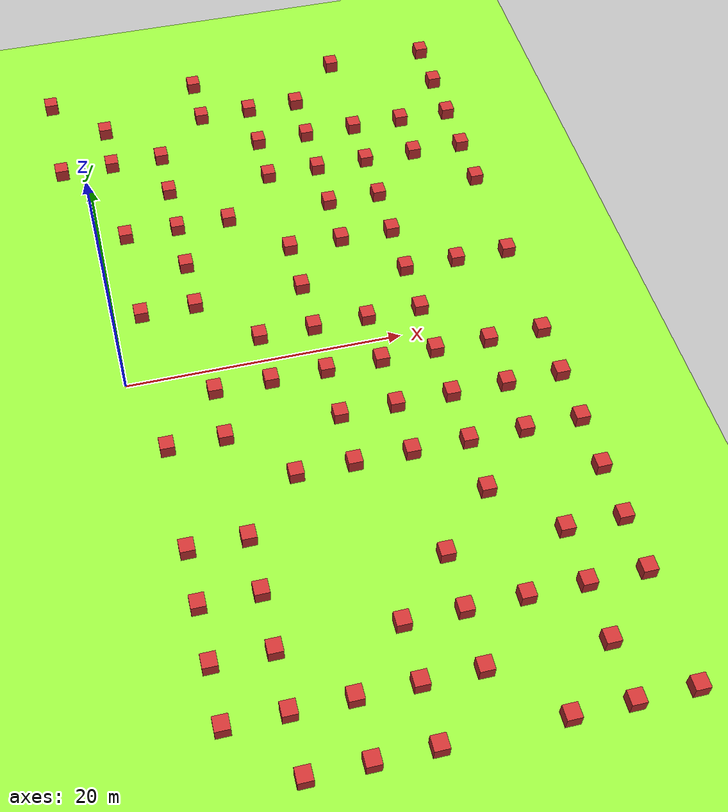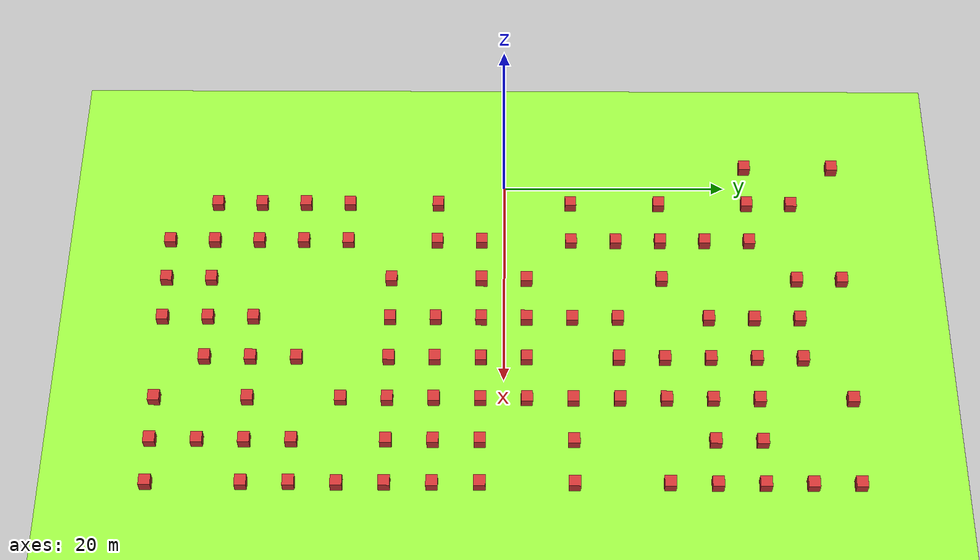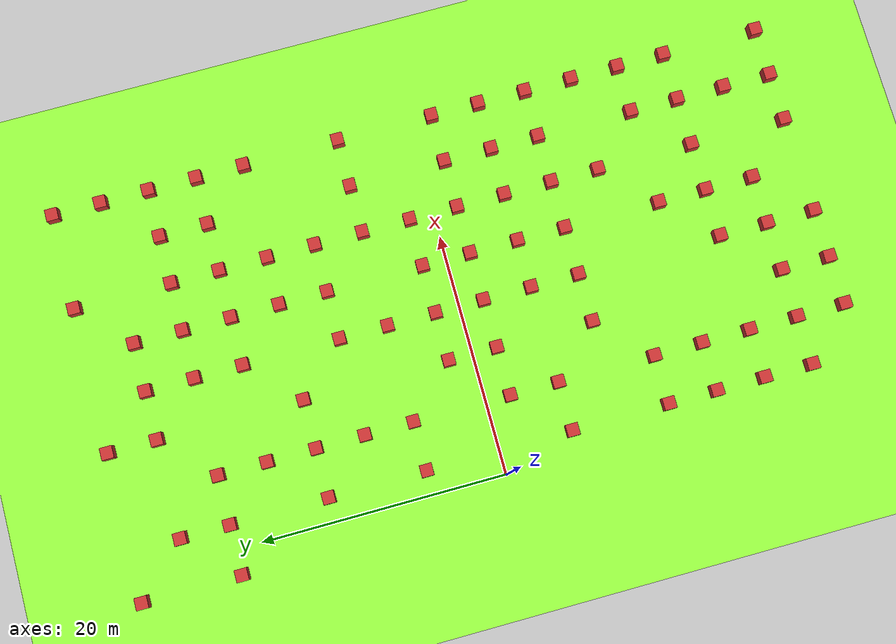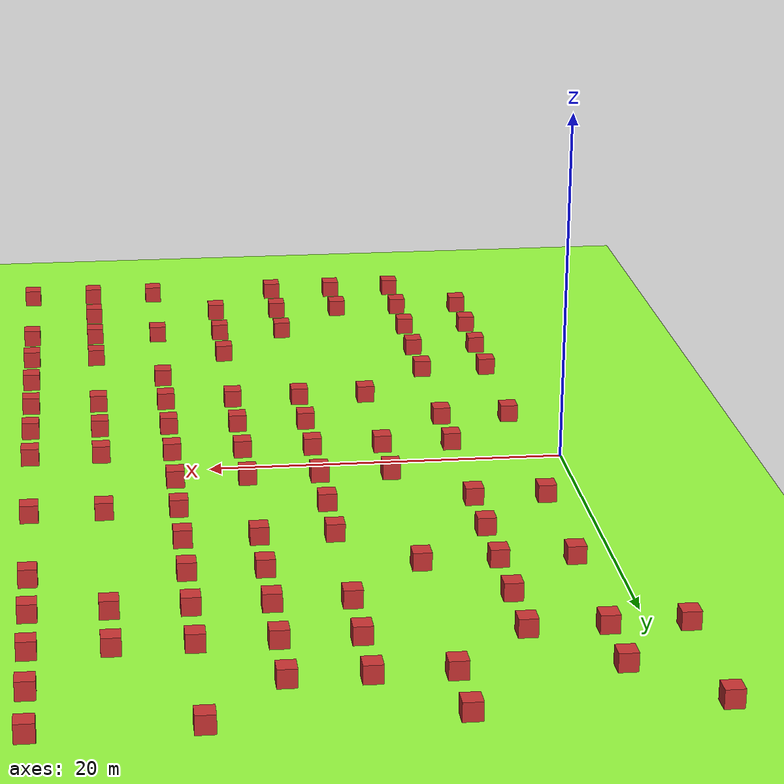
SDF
<sdf version="1.9">
 <world name="lawn_boxes">
  <model name="ground_plane">
   <static>true</static>
   <link name="link">
    <collision name="collision">
     <geometry><plane><normal>0 0 1</normal><size>1 1</size></plane></geometry>
     <surface>
      <friction><ode><mu>0.6</mu><mu2>0.6</mu2></ode></friction>
      <contact><collide_bitmask>65535</collide_bitmask><ode><min_depth>0.005</min_depth><kp>1e8</kp></ode></contact>
     </surface>
    </collision>
    <visual name="visual">
     <cast_shadows>false</cast_shadows>
     <geometry><plane><normal>0 0 1</normal><size>400 400</size></plane></geometry>
     <material>
      <diffuse>0.6 1.0 0.25 0.5</diffuse>
      <specular>0 0 0 0</specular>
      <emissive>0 0 0 0</emissive>
     </material>
    </visual>
    <inertial>
     <mass>1</mass>
     <inertia><ixx>1</ixx><ixy>0</ixy><ixz>0</ixz><iyy>1</iyy><iyz>0</iyz><izz>1</izz></inertia>
    </inertial>
   </link>
  </model>
  <model name="obstacle_box_90">
   <static>true</static>
   <pose>-2.00 22.00 0.50 0 0 0</pose>
   <link name="link">
    <collision name="collision"><geometry><box><size>1.0 1.0 1.0</size></box></geometry></collision>
    <visual name="visual">
     <geometry><box><size>1.0 1.0 1.0</size></box></geometry>
     <material><diffuse>0.8 0.2 0.2 1</diffuse><ambient>0.8 0.2 0.2 1</ambient></material>
    </visual>
   </link>
  </model>
  <model name="obstacle_box_91">
   <static>true</static>
   <pose>-2.00 30.00 0.50 0 0 0</pose>
   <link name="link">
    <collision name="collision"><geometry><box><size>1.0 1.0 1.0</size></box></geometry></collision>
    <visual name="visual">
     <geometry><box><size>1.0 1.0 1.0</size></box></geometry>
     <material><diffuse>0.8 0.2 0.2 1</diffuse><ambient>0.8 0.2 0.2 1</ambient></material>
    </visual>
   </link>
  </model>
  <model name="obstacle_box_92">
   <static>true</static>
   <pose>2.00 -26.00 0.50 0 0 0</pose>
   <link name="link">
    <collision name="collision"><geometry><box><size>1.0 1.0 1.0</size></box></geometry></collision>
    <visual name="visual">
     <geometry><box><size>1.0 1.0 1.0</size></box></geometry>
     <material><diffuse>0.8 0.2 0.2 1</diffuse><ambient>0.8 0.2 0.2 1</ambient></material>
    </visual>
   </link>
  </model>
  <model name="obstacle_box_93">
   <static>true</static>
   <pose>2.00 -22.00 0.50 0 0 0</pose>
   <link name="link">
    <collision name="collision"><geometry><box><size>1.0 1.0 1.0</size></box></geometry></collision>
    <visual name="visual">
     <geometry><box><size>1.0 1.0 1.0</size></box></geometry>
     <material><diffuse>0.8 0.2 0.2 1</diffuse><ambient>0.8 0.2 0.2 1</ambient></material>
    </visual>
   </link>
  </model>
  <model name="obstacle_box_94">
   <static>true</static>
   <pose>2.00 -18.00 0.50 0 0 0</pose>
   <link name="link">
    <collision name="collision"><geometry><box><size>1.0 1.0 1.0</size></box></geometry></collision>
    <visual name="visual">
     <geometry><box><size>1.0 1.0 1.0</size></box></geometry>
     <material><diffuse>0.8 0.2 0.2 1</diffuse><ambient>0.8 0.2 0.2 1</ambient></material>
    </visual>
   </link>
  </model>
  <model name="obstacle_box_95">
   <static>true</static>
   <pose>2.00 -14.00 0.50 0 0 0</pose>
   <link name="link">
    <collision name="collision"><geometry><box><size>1.0 1.0 1.0</size></box></geometry></collision>
    <visual name="visual">
     <geometry><box><size>1.0 1.0 1.0</size></box></geometry>
     <material><diffuse>0.8 0.2 0.2 1</diffuse><ambient>0.8 0.2 0.2 1</ambient></material>
    </visual>
   </link>
  </model>
  <model name="obstacle_box_96">
   <static>true</static>
   <pose>2.00 -6.00 0.50 0 0 0</pose>
   <link name="link">
    <collision name="collision"><geometry><box><size>1.0 1.0 1.0</size></box></geometry></collision>
    <visual name="visual">
     <geometry><box><size>1.0 1.0 1.0</size></box></geometry>
     <material><diffuse>0.8 0.2 0.2 1</diffuse><ambient>0.8 0.2 0.2 1</ambient></material>
    </visual>
   </link>
  </model>
  <model name="obstacle_box_97">
   <static>true</static>
   <pose>2.00 6.00 0.50 0 0 0</pose>
   <link name="link">
    <collision name="collision"><geometry><box><size>1.0 1.0 1.0</size></box></geometry></collision>
    <visual name="visual">
     <geometry><box><size>1.0 1.0 1.0</size></box></geometry>
     <material><diffuse>0.8 0.2 0.2 1</diffuse><ambient>0.8 0.2 0.2 1</ambient></material>
    </visual>
   </link>
  </model>
  <model name="obstacle_box_98">
   <static>true</static>
   <pose>2.00 14.00 0.50 0 0 0</pose>
   <link name="link">
    <collision name="collision"><geometry><box><size>1.0 1.0 1.0</size></box></geometry></collision>
    <visual name="visual">
     <geometry><box><size>1.0 1.0 1.0</size></box></geometry>
     <material><diffuse>0.8 0.2 0.2 1</diffuse><ambient>0.8 0.2 0.2 1</ambient></material>
    </visual>
   </link>
  </model>
  <model name="obstacle_box_99">
   <static>true</static>
   <pose>2.00 22.00 0.50 0 0 0</pose>
   <link name="link">
    <collision name="collision"><geometry><box><size>1.0 1.0 1.0</size></box></geometry></collision>
    <visual name="visual">
     <geometry><box><size>1.0 1.0 1.0</size></box></geometry>
     <material><diffuse>0.8 0.2 0.2 1</diffuse><ambient>0.8 0.2 0.2 1</ambient></material>
    </visual>
   </link>
  </model>
  <model name="obstacle_box_100">
   <static>true</static>
   <pose>2.00 26.00 0.50 0 0 0</pose>
   <link name="link">
    <collision name="collision"><geometry><box><size>1.0 1.0 1.0</size></box></geometry></collision>
    <visual name="visual">
     <geometry><box><size>1.0 1.0 1.0</size></box></geometry>
     <material><diffuse>0.8 0.2 0.2 1</diffuse><ambient>0.8 0.2 0.2 1</ambient></material>
    </visual>
   </link>
  </model>
  <model name="obstacle_box_101">
   <static>true</static>
   <pose>6.00 -30.00 0.50 0 0 0</pose>
   <link name="link">
    <collision name="collision"><geometry><box><size>1.0 1.0 1.0</size></box></geometry></collision>
    <visual name="visual">
     <geometry><box><size>1.0 1.0 1.0</size></box></geometry>
     <material><diffuse>0.8 0.2 0.2 1</diffuse><ambient>0.8 0.2 0.2 1</ambient></material>
    </visual>
   </link>
  </model>
  <model name="obstacle_box_102">
   <static>true</static>
   <pose>6.00 -26.00 0.50 0 0 0</pose>
   <link name="link">
    <collision name="collision"><geometry><box><size>1.0 1.0 1.0</size></box></geometry></collision>
    <visual name="visual">
     <geometry><box><size>1.0 1.0 1.0</size></box></geometry>
     <material><diffuse>0.8 0.2 0.2 1</diffuse><ambient>0.8 0.2 0.2 1</ambient></material>
    </visual>
   </link>
  </model>
  <model name="obstacle_box_103">
   <static>true</static>
   <pose>6.00 -22.00 0.50 0 0 0</pose>
   <link name="link">
    <collision name="collision"><geometry><box><size>1.0 1.0 1.0</size></box></geometry></collision>
    <visual name="visual">
     <geometry><box><size>1.0 1.0 1.0</size></box></geometry>
     <material><diffuse>0.8 0.2 0.2 1</diffuse><ambient>0.8 0.2 0.2 1</ambient></material>
    </visual>
   </link>
  </model>
  <model name="obstacle_box_104">
   <static>true</static>
   <pose>6.00 -18.00 0.50 0 0 0</pose>
   <link name="link">
    <collision name="collision"><geometry><box><size>1.0 1.0 1.0</size></box></geometry></collision>
    <visual name="visual">
     <geometry><box><size>1.0 1.0 1.0</size></box></geometry>
     <material><diffuse>0.8 0.2 0.2 1</diffuse><ambient>0.8 0.2 0.2 1</ambient></material>
    </visual>
   </link>
  </model>
  <model name="obstacle_box_105">
   <static>true</static>
   <pose>6.00 -14.00 0.50 0 0 0</pose>
   <link name="link">
    <collision name="collision"><geometry><box><size>1.0 1.0 1.0</size></box></geometry></collision>
    <visual name="visual">
     <geometry><box><size>1.0 1.0 1.0</size></box></geometry>
     <material><diffuse>0.8 0.2 0.2 1</diffuse><ambient>0.8 0.2 0.2 1</ambient></material>
    </visual>
   </link>
  </model>
  <model name="obstacle_box_106">
   <static>true</static>
   <pose>6.00 -6.00 0.50 0 0 0</pose>
   <link name="link">
    <collision name="collision"><geometry><box><size>1.0 1.0 1.0</size></box></geometry></collision>
    <visual name="visual">
     <geometry><box><size>1.0 1.0 1.0</size></box></geometry>
     <material><diffuse>0.8 0.2 0.2 1</diffuse><ambient>0.8 0.2 0.2 1</ambient></material>
    </visual>
   </link>
  </model>
  <model name="obstacle_box_107">
   <static>true</static>
   <pose>6.00 -2.00 0.50 0 0 0</pose>
   <link name="link">
    <collision name="collision"><geometry><box><size>1.0 1.0 1.0</size></box></geometry></collision>
    <visual name="visual">
     <geometry><box><size>1.0 1.0 1.0</size></box></geometry>
     <material><diffuse>0.8 0.2 0.2 1</diffuse><ambient>0.8 0.2 0.2 1</ambient></material>
    </visual>
   </link>
  </model>
  <model name="obstacle_box_108">
   <static>true</static>
   <pose>6.00 6.00 0.50 0 0 0</pose>
   <link name="link">
    <collision name="collision"><geometry><box><size>1.0 1.0 1.0</size></box></geometry></collision>
    <visual name="visual">
     <geometry><box><size>1.0 1.0 1.0</size></box></geometry>
     <material><diffuse>0.8 0.2 0.2 1</diffuse><ambient>0.8 0.2 0.2 1</ambient></material>
    </visual>
   </link>
  </model>
  <model name="obstacle_box_109">
   <static>true</static>
   <pose>6.00 10.00 0.50 0 0 0</pose>
   <link name="link">
    <collision name="collision"><geometry><box><size>1.0 1.0 1.0</size></box></geometry></collision>
    <visual name="visual">
     <geometry><box><size>1.0 1.0 1.0</size></box></geometry>
     <material><diffuse>0.8 0.2 0.2 1</diffuse><ambient>0.8 0.2 0.2 1</ambient></material>
    </visual>
   </link>
  </model>
  <model name="obstacle_box_110">
   <static>true</static>
   <pose>6.00 14.00 0.50 0 0 0</pose>
   <link name="link">
    <collision name="collision"><geometry><box><size>1.0 1.0 1.0</size></box></geometry></collision>
    <visual name="visual">
     <geometry><box><size>1.0 1.0 1.0</size></box></geometry>
     <material><diffuse>0.8 0.2 0.2 1</diffuse><ambient>0.8 0.2 0.2 1</ambient></material>
    </visual>
   </link>
  </model>
  <model name="obstacle_box_111">
   <static>true</static>
   <pose>6.00 18.00 0.50 0 0 0</pose>
   <link name="link">
    <collision name="collision"><geometry><box><size>1.0 1.0 1.0</size></box></geometry></collision>
    <visual name="visual">
     <geometry><box><size>1.0 1.0 1.0</size></box></geometry>
     <material><diffuse>0.8 0.2 0.2 1</diffuse><ambient>0.8 0.2 0.2 1</ambient></material>
    </visual>
   </link>
  </model>
  <model name="obstacle_box_112">
   <static>true</static>
   <pose>6.00 22.00 0.50 0 0 0</pose>
   <link name="link">
    <collision name="collision"><geometry><box><size>1.0 1.0 1.0</size></box></geometry></collision>
    <visual name="visual">
     <geometry><box><size>1.0 1.0 1.0</size></box></geometry>
     <material><diffuse>0.8 0.2 0.2 1</diffuse><ambient>0.8 0.2 0.2 1</ambient></material>
    </visual>
   </link>
  </model>
  <model name="obstacle_box_113">
   <static>true</static>
   <pose>10.00 -30.00 0.50 0 0 0</pose>
   <link name="link">
    <collision name="collision"><geometry><box><size>1.0 1.0 1.0</size></box></geometry></collision>
    <visual name="visual">
     <geometry><box><size>1.0 1.0 1.0</size></box></geometry>
     <material><diffuse>0.8 0.2 0.2 1</diffuse><ambient>0.8 0.2 0.2 1</ambient></material>
    </visual>
   </link>
  </model>
  <model name="obstacle_box_114">
   <static>true</static>
   <pose>10.00 -26.00 0.50 0 0 0</pose>
   <link name="link">
    <collision name="collision"><geometry><box><size>1.0 1.0 1.0</size></box></geometry></collision>
    <visual name="visual">
     <geometry><box><size>1.0 1.0 1.0</size></box></geometry>
     <material><diffuse>0.8 0.2 0.2 1</diffuse><ambient>0.8 0.2 0.2 1</ambient></material>
    </visual>
   </link>
  </model>
  <model name="obstacle_box_115">
   <static>true</static>
   <pose>10.00 -10.00 0.50 0 0 0</pose>
   <link name="link">
    <collision name="collision"><geometry><box><size>1.0 1.0 1.0</size></box></geometry></collision>
    <visual name="visual">
     <geometry><box><size>1.0 1.0 1.0</size></box></geometry>
     <material><diffuse>0.8 0.2 0.2 1</diffuse><ambient>0.8 0.2 0.2 1</ambient></material>
    </visual>
   </link>
  </model>
  <model name="obstacle_box_116">
   <static>true</static>
   <pose>10.00 -2.00 0.50 0 0 0</pose>
   <link name="link">
    <collision name="collision"><geometry><box><size>1.0 1.0 1.0</size></box></geometry></collision>
    <visual name="visual">
     <geometry><box><size>1.0 1.0 1.0</size></box></geometry>
     <material><diffuse>0.8 0.2 0.2 1</diffuse><ambient>0.8 0.2 0.2 1</ambient></material>
    </visual>
   </link>
  </model>
  <model name="obstacle_box_117">
   <static>true</static>
   <pose>10.00 2.00 0.50 0 0 0</pose>
   <link name="link">
    <collision name="collision"><geometry><box><size>1.0 1.0 1.0</size></box></geometry></collision>
    <visual name="visual">
     <geometry><box><size>1.0 1.0 1.0</size></box></geometry>
     <material><diffuse>0.8 0.2 0.2 1</diffuse><ambient>0.8 0.2 0.2 1</ambient></material>
    </visual>
   </link>
  </model>
  <model name="obstacle_box_118">
   <static>true</static>
   <pose>10.00 14.00 0.50 0 0 0</pose>
   <link name="link">
    <collision name="collision"><geometry><box><size>1.0 1.0 1.0</size></box></geometry></collision>
    <visual name="visual">
     <geometry><box><size>1.0 1.0 1.0</size></box></geometry>
     <material><diffuse>0.8 0.2 0.2 1</diffuse><ambient>0.8 0.2 0.2 1</ambient></material>
    </visual>
   </link>
  </model>
  <model name="obstacle_box_119">
   <static>true</static>
   <pose>10.00 26.00 0.50 0 0 0</pose>
   <link name="link">
    <collision name="collision"><geometry><box><size>1.0 1.0 1.0</size></box></geometry></collision>
    <visual name="visual">
     <geometry><box><size>1.0 1.0 1.0</size></box></geometry>
     <material><diffuse>0.8 0.2 0.2 1</diffuse><ambient>0.8 0.2 0.2 1</ambient></material>
    </visual>
   </link>
  </model>
  <model name="obstacle_box_120">
   <static>true</static>
   <pose>10.00 30.00 0.50 0 0 0</pose>
   <link name="link">
    <collision name="collision"><geometry><box><size>1.0 1.0 1.0</size></box></geometry></collision>
    <visual name="visual">
     <geometry><box><size>1.0 1.0 1.0</size></box></geometry>
     <material><diffuse>0.8 0.2 0.2 1</diffuse><ambient>0.8 0.2 0.2 1</ambient></material>
    </visual>
   </link>
  </model>
  <model name="obstacle_box_121">
   <static>true</static>
   <pose>14.00 -30.00 0.50 0 0 0</pose>
   <link name="link">
    <collision name="collision"><geometry><box><size>1.0 1.0 1.0</size></box></geometry></collision>
    <visual name="visual">
     <geometry><box><size>1.0 1.0 1.0</size></box></geometry>
     <material><diffuse>0.8 0.2 0.2 1</diffuse><ambient>0.8 0.2 0.2 1</ambient></material>
    </visual>
   </link>
  </model>
  <model name="obstacle_box_122">
   <static>true</static>
   <pose>14.00 -26.00 0.50 0 0 0</pose>
   <link name="link">
    <collision name="collision"><geometry><box><size>1.0 1.0 1.0</size></box></geometry></collision>
    <visual name="visual">
     <geometry><box><size>1.0 1.0 1.0</size></box></geometry>
     <material><diffuse>0.8 0.2 0.2 1</diffuse><ambient>0.8 0.2 0.2 1</ambient></material>
    </visual>
   </link>
  </model>
  <model name="obstacle_box_123">
   <static>true</static>
   <pose>14.00 -22.00 0.50 0 0 0</pose>
   <link name="link">
    <collision name="collision"><geometry><box><size>1.0 1.0 1.0</size></box></geometry></collision>
    <visual name="visual">
     <geometry><box><size>1.0 1.0 1.0</size></box></geometry>
     <material><diffuse>0.8 0.2 0.2 1</diffuse><ambient>0.8 0.2 0.2 1</ambient></material>
    </visual>
   </link>
  </model>
  <model name="obstacle_box_124">
   <static>true</static>
   <pose>14.00 -10.00 0.50 0 0 0</pose>
   <link name="link">
    <collision name="collision"><geometry><box><size>1.0 1.0 1.0</size></box></geometry></collision>
    <visual name="visual">
     <geometry><box><size>1.0 1.0 1.0</size></box></geometry>
     <material><diffuse>0.8 0.2 0.2 1</diffuse><ambient>0.8 0.2 0.2 1</ambient></material>
    </visual>
   </link>
  </model>
  <model name="obstacle_box_125">
   <static>true</static>
   <pose>14.00 -6.00 0.50 0 0 0</pose>
   <link name="link">
    <collision name="collision"><geometry><box><size>1.0 1.0 1.0</size></box></geometry></collision>
    <visual name="visual">
     <geometry><box><size>1.0 1.0 1.0</size></box></geometry>
     <material><diffuse>0.8 0.2 0.2 1</diffuse><ambient>0.8 0.2 0.2 1</ambient></material>
    </visual>
   </link>
  </model>
  <model name="obstacle_box_126">
   <static>true</static>
   <pose>14.00 -2.00 0.50 0 0 0</pose>
   <link name="link">
    <collision name="collision"><geometry><box><size>1.0 1.0 1.0</size></box></geometry></collision>
    <visual name="visual">
     <geometry><box><size>1.0 1.0 1.0</size></box></geometry>
     <material><diffuse>0.8 0.2 0.2 1</diffuse><ambient>0.8 0.2 0.2 1</ambient></material>
    </visual>
   </link>
  </model>
  <model name="obstacle_box_127">
   <static>true</static>
   <pose>14.00 2.00 0.50 0 0 0</pose>
   <link name="link">
    <collision name="collision"><geometry><box><size>1.0 1.0 1.0</size></box></geometry></collision>
    <visual name="visual">
     <geometry><box><size>1.0 1.0 1.0</size></box></geometry>
     <material><diffuse>0.8 0.2 0.2 1</diffuse><ambient>0.8 0.2 0.2 1</ambient></material>
    </visual>
   </link>
  </model>
  <model name="obstacle_box_128">
   <static>true</static>
   <pose>14.00 6.00 0.50 0 0 0</pose>
   <link name="link">
    <collision name="collision"><geometry><box><size>1.0 1.0 1.0</size></box></geometry></collision>
    <visual name="visual">
     <geometry><box><size>1.0 1.0 1.0</size></box></geometry>
     <material><diffuse>0.8 0.2 0.2 1</diffuse><ambient>0.8 0.2 0.2 1</ambient></material>
    </visual>
   </link>
  </model>
  <model name="obstacle_box_129">
   <static>true</static>
   <pose>14.00 10.00 0.50 0 0 0</pose>
   <link name="link">
    <collision name="collision"><geometry><box><size>1.0 1.0 1.0</size></box></geometry></collision>
    <visual name="visual">
     <geometry><box><size>1.0 1.0 1.0</size></box></geometry>
     <material><diffuse>0.8 0.2 0.2 1</diffuse><ambient>0.8 0.2 0.2 1</ambient></material>
    </visual>
   </link>
  </model>
  <model name="obstacle_box_130">
   <static>true</static>
   <pose>14.00 18.00 0.50 0 0 0</pose>
   <link name="link">
    <collision name="collision"><geometry><box><size>1.0 1.0 1.0</size></box></geometry></collision>
    <visual name="visual">
     <geometry><box><size>1.0 1.0 1.0</size></box></geometry>
     <material><diffuse>0.8 0.2 0.2 1</diffuse><ambient>0.8 0.2 0.2 1</ambient></material>
    </visual>
   </link>
  </model>
  <model name="obstacle_box_131">
   <static>true</static>
   <pose>14.00 22.00 0.50 0 0 0</pose>
   <link name="link">
    <collision name="collision"><geometry><box><size>1.0 1.0 1.0</size></box></geometry></collision>
    <visual name="visual">
     <geometry><box><size>1.0 1.0 1.0</size></box></geometry>
     <material><diffuse>0.8 0.2 0.2 1</diffuse><ambient>0.8 0.2 0.2 1</ambient></material>
    </visual>
   </link>
  </model>
  <model name="obstacle_box_132">
   <static>true</static>
   <pose>14.00 26.00 0.50 0 0 0</pose>
   <link name="link">
    <collision name="collision"><geometry><box><size>1.0 1.0 1.0</size></box></geometry></collision>
    <visual name="visual">
     <geometry><box><size>1.0 1.0 1.0</size></box></geometry>
     <material><diffuse>0.8 0.2 0.2 1</diffuse><ambient>0.8 0.2 0.2 1</ambient></material>
    </visual>
   </link>
  </model>
  <model name="obstacle_box_133">
   <static>true</static>
   <pose>18.00 -26.00 0.50 0 0 0</pose>
   <link name="link">
    <collision name="collision"><geometry><box><size>1.0 1.0 1.0</size></box></geometry></collision>
    <visual name="visual">
     <geometry><box><size>1.0 1.0 1.0</size></box></geometry>
     <material><diffuse>0.8 0.2 0.2 1</diffuse><ambient>0.8 0.2 0.2 1</ambient></material>
    </visual>
   </link>
  </model>
  <model name="obstacle_box_134">
   <static>true</static>
   <pose>18.00 -22.00 0.50 0 0 0</pose>
   <link name="link">
    <collision name="collision"><geometry><box><size>1.0 1.0 1.0</size></box></geometry></collision>
    <visual name="visual">
     <geometry><box><size>1.0 1.0 1.0</size></box></geometry>
     <material><diffuse>0.8 0.2 0.2 1</diffuse><ambient>0.8 0.2 0.2 1</ambient></material>
    </visual>
   </link>
  </model>
  <model name="obstacle_box_135">
   <static>true</static>
   <pose>18.00 -18.00 0.50 0 0 0</pose>
   <link name="link">
    <collision name="collision"><geometry><box><size>1.0 1.0 1.0</size></box></geometry></collision>
    <visual name="visual">
     <geometry><box><size>1.0 1.0 1.0</size></box></geometry>
     <material><diffuse>0.8 0.2 0.2 1</diffuse><ambient>0.8 0.2 0.2 1</ambient></material>
    </visual>
   </link>
  </model>
  <model name="obstacle_box_136">
   <static>true</static>
   <pose>18.00 -10.00 0.50 0 0 0</pose>
   <link name="link">
    <collision name="collision"><geometry><box><size>1.0 1.0 1.0</size></box></geometry></collision>
    <visual name="visual">
     <geometry><box><size>1.0 1.0 1.0</size></box></geometry>
     <material><diffuse>0.8 0.2 0.2 1</diffuse><ambient>0.8 0.2 0.2 1</ambient></material>
    </visual>
   </link>
  </model>
  <model name="obstacle_box_137">
   <static>true</static>
   <pose>18.00 -6.00 0.50 0 0 0</pose>
   <link name="link">
    <collision name="collision"><geometry><box><size>1.0 1.0 1.0</size></box></geometry></collision>
    <visual name="visual">
     <geometry><box><size>1.0 1.0 1.0</size></box></geometry>
     <material><diffuse>0.8 0.2 0.2 1</diffuse><ambient>0.8 0.2 0.2 1</ambient></material>
    </visual>
   </link>
  </model>
  <model name="obstacle_box_138">
   <static>true</static>
   <pose>18.00 -2.00 0.50 0 0 0</pose>
   <link name="link">
    <collision name="collision"><geometry><box><size>1.0 1.0 1.0</size></box></geometry></collision>
    <visual name="visual">
     <geometry><box><size>1.0 1.0 1.0</size></box></geometry>
     <material><diffuse>0.8 0.2 0.2 1</diffuse><ambient>0.8 0.2 0.2 1</ambient></material>
    </visual>
   </link>
  </model>
  <model name="obstacle_box_139">
   <static>true</static>
   <pose>18.00 2.00 0.50 0 0 0</pose>
   <link name="link">
    <collision name="collision"><geometry><box><size>1.0 1.0 1.0</size></box></geometry></collision>
    <visual name="visual">
     <geometry><box><size>1.0 1.0 1.0</size></box></geometry>
     <material><diffuse>0.8 0.2 0.2 1</diffuse><ambient>0.8 0.2 0.2 1</ambient></material>
    </visual>
   </link>
  </model>
  <model name="obstacle_box_140">
   <static>true</static>
   <pose>18.00 10.00 0.50 0 0 0</pose>
   <link name="link">
    <collision name="collision"><geometry><box><size>1.0 1.0 1.0</size></box></geometry></collision>
    <visual name="visual">
     <geometry><box><size>1.0 1.0 1.0</size></box></geometry>
     <material><diffuse>0.8 0.2 0.2 1</diffuse><ambient>0.8 0.2 0.2 1</ambient></material>
    </visual>
   </link>
  </model>
  <model name="obstacle_box_141">
   <static>true</static>
   <pose>18.00 14.00 0.50 0 0 0</pose>
   <link name="link">
    <collision name="collision"><geometry><box><size>1.0 1.0 1.0</size></box></geometry></collision>
    <visual name="visual">
     <geometry><box><size>1.0 1.0 1.0</size></box></geometry>
     <material><diffuse>0.8 0.2 0.2 1</diffuse><ambient>0.8 0.2 0.2 1</ambient></material>
    </visual>
   </link>
  </model>
  <model name="obstacle_box_142">
   <static>true</static>
   <pose>18.00 18.00 0.50 0 0 0</pose>
   <link name="link">
    <collision name="collision"><geometry><box><size>1.0 1.0 1.0</size></box></geometry></collision>
    <visual name="visual">
     <geometry><box><size>1.0 1.0 1.0</size></box></geometry>
     <material><diffuse>0.8 0.2 0.2 1</diffuse><ambient>0.8 0.2 0.2 1</ambient></material>
    </visual>
   </link>
  </model>
  <model name="obstacle_box_143">
   <static>true</static>
   <pose>18.00 22.00 0.50 0 0 0</pose>
   <link name="link">
    <collision name="collision"><geometry><box><size>1.0 1.0 1.0</size></box></geometry></collision>
    <visual name="visual">
     <geometry><box><size>1.0 1.0 1.0</size></box></geometry>
     <material><diffuse>0.8 0.2 0.2 1</diffuse><ambient>0.8 0.2 0.2 1</ambient></material>
    </visual>
   </link>
  </model>
  <model name="obstacle_box_144">
   <static>true</static>
   <pose>18.00 26.00 0.50 0 0 0</pose>
   <link name="link">
    <collision name="collision"><geometry><box><size>1.0 1.0 1.0</size></box></geometry></collision>
    <visual name="visual">
     <geometry><box><size>1.0 1.0 1.0</size></box></geometry>
     <material><diffuse>0.8 0.2 0.2 1</diffuse><ambient>0.8 0.2 0.2 1</ambient></material>
    </visual>
   </link>
  </model>
  <model name="obstacle_box_145">
   <static>true</static>
   <pose>22.00 -30.00 0.50 0 0 0</pose>
   <link name="link">
    <collision name="collision"><geometry><box><size>1.0 1.0 1.0</size></box></geometry></collision>
    <visual name="visual">
     <geometry><box><size>1.0 1.0 1.0</size></box></geometry>
     <material><diffuse>0.8 0.2 0.2 1</diffuse><ambient>0.8 0.2 0.2 1</ambient></material>
    </visual>
   </link>
  </model>
  <model name="obstacle_box_146">
   <static>true</static>
   <pose>22.00 -22.00 0.50 0 0 0</pose>
   <link name="link">
    <collision name="collision"><geometry><box><size>1.0 1.0 1.0</size></box></geometry></collision>
    <visual name="visual">
     <geometry><box><size>1.0 1.0 1.0</size></box></geometry>
     <material><diffuse>0.8 0.2 0.2 1</diffuse><ambient>0.8 0.2 0.2 1</ambient></material>
    </visual>
   </link>
  </model>
  <model name="obstacle_box_147">
   <static>true</static>
   <pose>22.00 -14.00 0.50 0 0 0</pose>
   <link name="link">
    <collision name="collision"><geometry><box><size>1.0 1.0 1.0</size></box></geometry></collision>
    <visual name="visual">
     <geometry><box><size>1.0 1.0 1.0</size></box></geometry>
     <material><diffuse>0.8 0.2 0.2 1</diffuse><ambient>0.8 0.2 0.2 1</ambient></material>
    </visual>
   </link>
  </model>
  <model name="obstacle_box_148">
   <static>true</static>
   <pose>22.00 -10.00 0.50 0 0 0</pose>
   <link name="link">
    <collision name="collision"><geometry><box><size>1.0 1.0 1.0</size></box></geometry></collision>
    <visual name="visual">
     <geometry><box><size>1.0 1.0 1.0</size></box></geometry>
     <material><diffuse>0.8 0.2 0.2 1</diffuse><ambient>0.8 0.2 0.2 1</ambient></material>
    </visual>
   </link>
  </model>
  <model name="obstacle_box_149">
   <static>true</static>
   <pose>22.00 -6.00 0.50 0 0 0</pose>
   <link name="link">
    <collision name="collision"><geometry><box><size>1.0 1.0 1.0</size></box></geometry></collision>
    <visual name="visual">
     <geometry><box><size>1.0 1.0 1.0</size></box></geometry>
     <material><diffuse>0.8 0.2 0.2 1</diffuse><ambient>0.8 0.2 0.2 1</ambient></material>
    </visual>
   </link>
  </model>
  <model name="obstacle_box_150">
   <static>true</static>
   <pose>22.00 -2.00 0.50 0 0 0</pose>
   <link name="link">
    <collision name="collision"><geometry><box><size>1.0 1.0 1.0</size></box></geometry></collision>
    <visual name="visual">
     <geometry><box><size>1.0 1.0 1.0</size></box></geometry>
     <material><diffuse>0.8 0.2 0.2 1</diffuse><ambient>0.8 0.2 0.2 1</ambient></material>
    </visual>
   </link>
  </model>
  <model name="obstacle_box_151">
   <static>true</static>
   <pose>22.00 2.00 0.50 0 0 0</pose>
   <link name="link">
    <collision name="collision"><geometry><box><size>1.0 1.0 1.0</size></box></geometry></collision>
    <visual name="visual">
     <geometry><box><size>1.0 1.0 1.0</size></box></geometry>
     <material><diffuse>0.8 0.2 0.2 1</diffuse><ambient>0.8 0.2 0.2 1</ambient></material>
    </visual>
   </link>
  </model>
  <model name="obstacle_box_152">
   <static>true</static>
   <pose>22.00 6.00 0.50 0 0 0</pose>
   <link name="link">
    <collision name="collision"><geometry><box><size>1.0 1.0 1.0</size></box></geometry></collision>
    <visual name="visual">
     <geometry><box><size>1.0 1.0 1.0</size></box></geometry>
     <material><diffuse>0.8 0.2 0.2 1</diffuse><ambient>0.8 0.2 0.2 1</ambient></material>
    </visual>
   </link>
  </model>
  <model name="obstacle_box_153">
   <static>true</static>
   <pose>22.00 10.00 0.50 0 0 0</pose>
   <link name="link">
    <collision name="collision"><geometry><box><size>1.0 1.0 1.0</size></box></geometry></collision>
    <visual name="visual">
     <geometry><box><size>1.0 1.0 1.0</size></box></geometry>
     <material><diffuse>0.8 0.2 0.2 1</diffuse><ambient>0.8 0.2 0.2 1</ambient></material>
    </visual>
   </link>
  </model>
  <model name="obstacle_box_154">
   <static>true</static>
   <pose>22.00 14.00 0.50 0 0 0</pose>
   <link name="link">
    <collision name="collision"><geometry><box><size>1.0 1.0 1.0</size></box></geometry></collision>
    <visual name="visual">
     <geometry><box><size>1.0 1.0 1.0</size></box></geometry>
     <material><diffuse>0.8 0.2 0.2 1</diffuse><ambient>0.8 0.2 0.2 1</ambient></material>
    </visual>
   </link>
  </model>
  <model name="obstacle_box_155">
   <static>true</static>
   <pose>22.00 18.00 0.50 0 0 0</pose>
   <link name="link">
    <collision name="collision"><geometry><box><size>1.0 1.0 1.0</size></box></geometry></collision>
    <visual name="visual">
     <geometry><box><size>1.0 1.0 1.0</size></box></geometry>
     <material><diffuse>0.8 0.2 0.2 1</diffuse><ambient>0.8 0.2 0.2 1</ambient></material>
    </visual>
   </link>
  </model>
  <model name="obstacle_box_156">
   <static>true</static>
   <pose>22.00 22.00 0.50 0 0 0</pose>
   <link name="link">
    <collision name="collision"><geometry><box><size>1.0 1.0 1.0</size></box></geometry></collision>
    <visual name="visual">
     <geometry><box><size>1.0 1.0 1.0</size></box></geometry>
     <material><diffuse>0.8 0.2 0.2 1</diffuse><ambient>0.8 0.2 0.2 1</ambient></material>
    </visual>
   </link>
  </model>
  <model name="obstacle_box_157">
   <static>true</static>
   <pose>22.00 30.00 0.50 0 0 0</pose>
   <link name="link">
    <collision name="collision"><geometry><box><size>1.0 1.0 1.0</size></box></geometry></collision>
    <visual name="visual">
     <geometry><box><size>1.0 1.0 1.0</size></box></geometry>
     <material><diffuse>0.8 0.2 0.2 1</diffuse><ambient>0.8 0.2 0.2 1</ambient></material>
    </visual>
   </link>
  </model>
  <model name="obstacle_box_158">
   <static>true</static>
   <pose>26.00 -30.00 0.50 0 0 0</pose>
   <link name="link">
    <collision name="collision"><geometry><box><size>1.0 1.0 1.0</size></box></geometry></collision>
    <visual name="visual">
     <geometry><box><size>1.0 1.0 1.0</size></box></geometry>
     <material><diffuse>0.8 0.2 0.2 1</diffuse><ambient>0.8 0.2 0.2 1</ambient></material>
    </visual>
   </link>
  </model>
  <model name="obstacle_box_159">
   <static>true</static>
   <pose>26.00 -26.00 0.50 0 0 0</pose>
   <link name="link">
    <collision name="collision"><geometry><box><size>1.0 1.0 1.0</size></box></geometry></collision>
    <visual name="visual">
     <geometry><box><size>1.0 1.0 1.0</size></box></geometry>
     <material><diffuse>0.8 0.2 0.2 1</diffuse><ambient>0.8 0.2 0.2 1</ambient></material>
    </visual>
   </link>
  </model>
  <model name="obstacle_box_160">
   <static>true</static>
   <pose>26.00 -22.00 0.50 0 0 0</pose>
   <link name="link">
    <collision name="collision"><geometry><box><size>1.0 1.0 1.0</size></box></geometry></collision>
    <visual name="visual">
     <geometry><box><size>1.0 1.0 1.0</size></box></geometry>
     <material><diffuse>0.8 0.2 0.2 1</diffuse><ambient>0.8 0.2 0.2 1</ambient></material>
    </visual>
   </link>
  </model>
  <model name="obstacle_box_161">
   <static>true</static>
   <pose>26.00 -18.00 0.50 0 0 0</pose>
   <link name="link">
    <collision name="collision"><geometry><box><size>1.0 1.0 1.0</size></box></geometry></collision>
    <visual name="visual">
     <geometry><box><size>1.0 1.0 1.0</size></box></geometry>
     <material><diffuse>0.8 0.2 0.2 1</diffuse><ambient>0.8 0.2 0.2 1</ambient></material>
    </visual>
   </link>
  </model>
  <model name="obstacle_box_162">
   <static>true</static>
   <pose>26.00 -10.00 0.50 0 0 0</pose>
   <link name="link">
    <collision name="collision"><geometry><box><size>1.0 1.0 1.0</size></box></geometry></collision>
    <visual name="visual">
     <geometry><box><size>1.0 1.0 1.0</size></box></geometry>
     <material><diffuse>0.8 0.2 0.2 1</diffuse><ambient>0.8 0.2 0.2 1</ambient></material>
    </visual>
   </link>
  </model>
  <model name="obstacle_box_163">
   <static>true</static>
   <pose>26.00 -6.00 0.50 0 0 0</pose>
   <link name="link">
    <collision name="collision"><geometry><box><size>1.0 1.0 1.0</size></box></geometry></collision>
    <visual name="visual">
     <geometry><box><size>1.0 1.0 1.0</size></box></geometry>
     <material><diffuse>0.8 0.2 0.2 1</diffuse><ambient>0.8 0.2 0.2 1</ambient></material>
    </visual>
   </link>
  </model>
  <model name="obstacle_box_164">
   <static>true</static>
   <pose>26.00 -2.00 0.50 0 0 0</pose>
   <link name="link">
    <collision name="collision"><geometry><box><size>1.0 1.0 1.0</size></box></geometry></collision>
    <visual name="visual">
     <geometry><box><size>1.0 1.0 1.0</size></box></geometry>
     <material><diffuse>0.8 0.2 0.2 1</diffuse><ambient>0.8 0.2 0.2 1</ambient></material>
    </visual>
   </link>
  </model>
  <model name="obstacle_box_165">
   <static>true</static>
   <pose>26.00 6.00 0.50 0 0 0</pose>
   <link name="link">
    <collision name="collision"><geometry><box><size>1.0 1.0 1.0</size></box></geometry></collision>
    <visual name="visual">
     <geometry><box><size>1.0 1.0 1.0</size></box></geometry>
     <material><diffuse>0.8 0.2 0.2 1</diffuse><ambient>0.8 0.2 0.2 1</ambient></material>
    </visual>
   </link>
  </model>
  <model name="obstacle_box_166">
   <static>true</static>
   <pose>26.00 18.00 0.50 0 0 0</pose>
   <link name="link">
    <collision name="collision"><geometry><box><size>1.0 1.0 1.0</size></box></geometry></collision>
    <visual name="visual">
     <geometry><box><size>1.0 1.0 1.0</size></box></geometry>
     <material><diffuse>0.8 0.2 0.2 1</diffuse><ambient>0.8 0.2 0.2 1</ambient></material>
    </visual>
   </link>
  </model>
  <model name="obstacle_box_167">
   <static>true</static>
   <pose>26.00 22.00 0.50 0 0 0</pose>
   <link name="link">
    <collision name="collision"><geometry><box><size>1.0 1.0 1.0</size></box></geometry></collision>
    <visual name="visual">
     <geometry><box><size>1.0 1.0 1.0</size></box></geometry>
     <material><diffuse>0.8 0.2 0.2 1</diffuse><ambient>0.8 0.2 0.2 1</ambient></material>
    </visual>
   </link>
  </model>
  <model name="obstacle_box_168">
   <static>true</static>
   <pose>30.00 -30.00 0.50 0 0 0</pose>
   <link name="link">
    <collision name="collision"><geometry><box><size>1.0 1.0 1.0</size></box></geometry></collision>
    <visual name="visual">
     <geometry><box><size>1.0 1.0 1.0</size></box></geometry>
     <material><diffuse>0.8 0.2 0.2 1</diffuse><ambient>0.8 0.2 0.2 1</ambient></material>
    </visual>
   </link>
  </model>
  <model name="obstacle_box_169">
   <static>true</static>
   <pose>30.00 -22.00 0.50 0 0 0</pose>
   <link name="link">
    <collision name="collision"><geometry><box><size>1.0 1.0 1.0</size></box></geometry></collision>
    <visual name="visual">
     <geometry><box><size>1.0 1.0 1.0</size></box></geometry>
     <material><diffuse>0.8 0.2 0.2 1</diffuse><ambient>0.8 0.2 0.2 1</ambient></material>
    </visual>
   </link>
  </model>
  <model name="obstacle_box_170">
   <static>true</static>
   <pose>30.00 -18.00 0.50 0 0 0</pose>
   <link name="link">
    <collision name="collision"><geometry><box><size>1.0 1.0 1.0</size></box></geometry></collision>
    <visual name="visual">
     <geometry><box><size>1.0 1.0 1.0</size></box></geometry>
     <material><diffuse>0.8 0.2 0.2 1</diffuse><ambient>0.8 0.2 0.2 1</ambient></material>
    </visual>
   </link>
  </model>
  <model name="obstacle_box_171">
   <static>true</static>
   <pose>30.00 -14.00 0.50 0 0 0</pose>
   <link name="link">
    <collision name="collision"><geometry><box><size>1.0 1.0 1.0</size></box></geometry></collision>
    <visual name="visual">
     <geometry><box><size>1.0 1.0 1.0</size></box></geometry>
     <material><diffuse>0.8 0.2 0.2 1</diffuse><ambient>0.8 0.2 0.2 1</ambient></material>
    </visual>
   </link>
  </model>
  <model name="obstacle_box_172">
   <static>true</static>
   <pose>30.00 -10.00 0.50 0 0 0</pose>
   <link name="link">
    <collision name="collision"><geometry><box><size>1.0 1.0 1.0</size></box></geometry></collision>
    <visual name="visual">
     <geometry><box><size>1.0 1.0 1.0</size></box></geometry>
     <material><diffuse>0.8 0.2 0.2 1</diffuse><ambient>0.8 0.2 0.2 1</ambient></material>
    </visual>
   </link>
  </model>
  <model name="obstacle_box_173">
   <static>true</static>
   <pose>30.00 -6.00 0.50 0 0 0</pose>
   <link name="link">
    <collision name="collision"><geometry><box><size>1.0 1.0 1.0</size></box></geometry></collision>
    <visual name="visual">
     <geometry><box><size>1.0 1.0 1.0</size></box></geometry>
     <material><diffuse>0.8 0.2 0.2 1</diffuse><ambient>0.8 0.2 0.2 1</ambient></material>
    </visual>
   </link>
  </model>
  <model name="obstacle_box_174">
   <static>true</static>
   <pose>30.00 -2.00 0.50 0 0 0</pose>
   <link name="link">
    <collision name="collision"><geometry><box><size>1.0 1.0 1.0</size></box></geometry></collision>
    <visual name="visual">
     <geometry><box><size>1.0 1.0 1.0</size></box></geometry>
     <material><diffuse>0.8 0.2 0.2 1</diffuse><ambient>0.8 0.2 0.2 1</ambient></material>
    </visual>
   </link>
  </model>
  <model name="obstacle_box_175">
   <static>true</static>
   <pose>30.00 6.00 0.50 0 0 0</pose>
   <link name="link">
    <collision name="collision"><geometry><box><size>1.0 1.0 1.0</size></box></geometry></collision>
    <visual name="visual">
     <geometry><box><size>1.0 1.0 1.0</size></box></geometry>
     <material><diffuse>0.8 0.2 0.2 1</diffuse><ambient>0.8 0.2 0.2 1</ambient></material>
    </visual>
   </link>
  </model>
  <model name="obstacle_box_176">
   <static>true</static>
   <pose>30.00 14.00 0.50 0 0 0</pose>
   <link name="link">
    <collision name="collision"><geometry><box><size>1.0 1.0 1.0</size></box></geometry></collision>
    <visual name="visual">
     <geometry><box><size>1.0 1.0 1.0</size></box></geometry>
     <material><diffuse>0.8 0.2 0.2 1</diffuse><ambient>0.8 0.2 0.2 1</ambient></material>
    </visual>
   </link>
  </model>
  <model name="obstacle_box_177">
   <static>true</static>
   <pose>30.00 18.00 0.50 0 0 0</pose>
   <link name="link">
    <collision name="collision"><geometry><box><size>1.0 1.0 1.0</size></box></geometry></collision>
    <visual name="visual">
     <geometry><box><size>1.0 1.0 1.0</size></box></geometry>
     <material><diffuse>0.8 0.2 0.2 1</diffuse><ambient>0.8 0.2 0.2 1</ambient></material>
    </visual>
   </link>
  </model>
  <model name="obstacle_box_178">
   <static>true</static>
   <pose>30.00 22.00 0.50 0 0 0</pose>
   <link name="link">
    <collision name="collision"><geometry><box><size>1.0 1.0 1.0</size></box></geometry></collision>
    <visual name="visual">
     <geometry><box><size>1.0 1.0 1.0</size></box></geometry>
     <material><diffuse>0.8 0.2 0.2 1</diffuse><ambient>0.8 0.2 0.2 1</ambient></material>
    </visual>
   </link>
  </model>
  <model name="obstacle_box_179">
   <static>true</static>
   <pose>30.00 26.00 0.50 0 0 0</pose>
   <link name="link">
    <collision name="collision"><geometry><box><size>1.0 1.0 1.0</size></box></geometry></collision>
    <visual name="visual">
     <geometry><box><size>1.0 1.0 1.0</size></box></geometry>
     <material><diffuse>0.8 0.2 0.2 1</diffuse><ambient>0.8 0.2 0.2 1</ambient></material>
    </visual>
   </link>
  </model>
  <model name="obstacle_box_180">
   <static>true</static>
   <pose>30.00 30.00 0.50 0 0 0</pose>
   <link name="link">
    <collision name="collision"><geometry><box><size>1.0 1.0 1.0</size></box></geometry></collision>
    <visual name="visual">
     <geometry><box><size>1.0 1.0 1.0</size></box></geometry>
     <material><diffuse>0.8 0.2 0.2 1</diffuse><ambient>0.8 0.2 0.2 1</ambient></material>
    </visual>
   </link>
  </model>
 </world>
</sdf>
